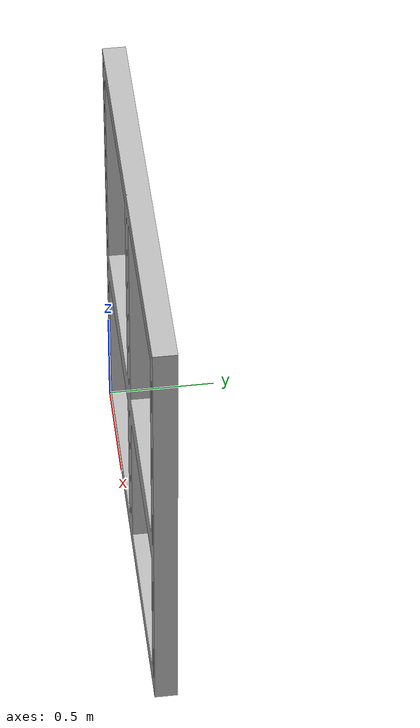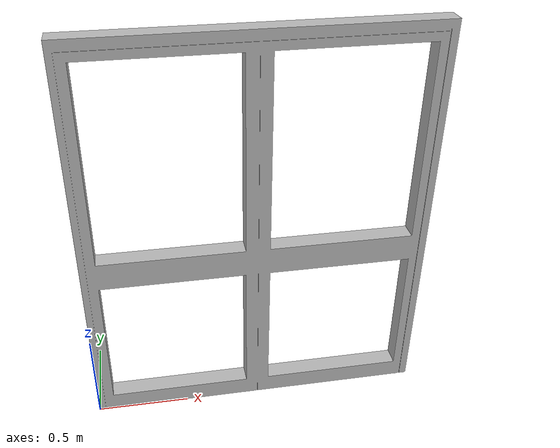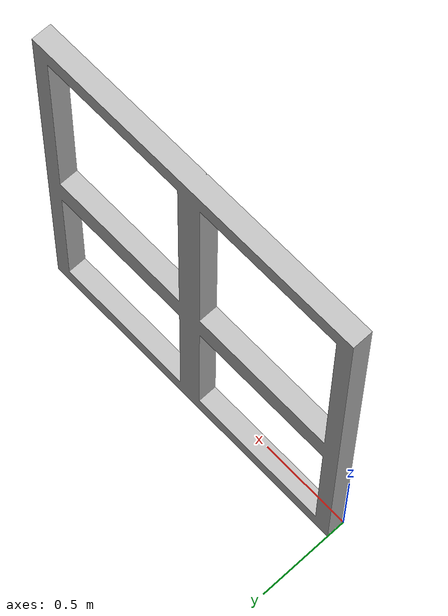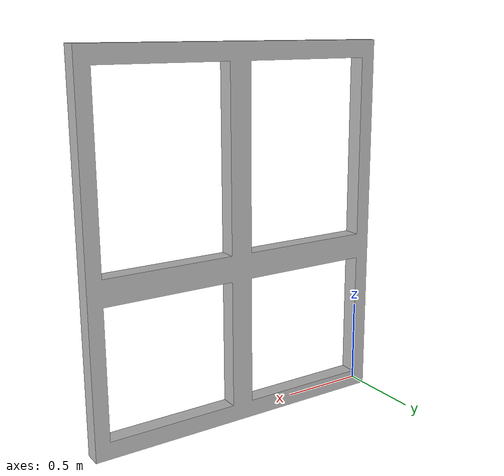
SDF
<?xml version="1.0"?>
<sdf version="1.5">
<model name="dvere_vchodove_1">
	<pose>0 0 0 0 0 0</pose>
	<static>true</static>
	<link name="dvere_vchodove_1_collision">
		<collision name="dvere_vchodove_1_collision">
		<geometry>
			<mesh>
				<uri>model://dvere_vchodove_1/meshes/model.dae</uri>
				<scale> 0.85 1 1 </scale>
			</mesh>
		</geometry>
		</collision>
	<visual name="dvere_vchodove_1_mesh">
	<cast_shadows>false</cast_shadows>
		<geometry>
			<mesh>
				<uri> model://dvere_vchodove_1/meshes/model.dae</uri>
				<scale> 0.85 1 1 </scale>
			</mesh>
		</geometry>
		<material>
		<script>
			<uri> model://dvere_vchodove_1/material/scripts</uri>
			<uri> model://dvere_vchodove_1/material/textures</uri>
			<name>dvere_vchodove_1/Diffuse</name>
		</script>
		</material>

	</visual>
</link>
</model>
</sdf>
